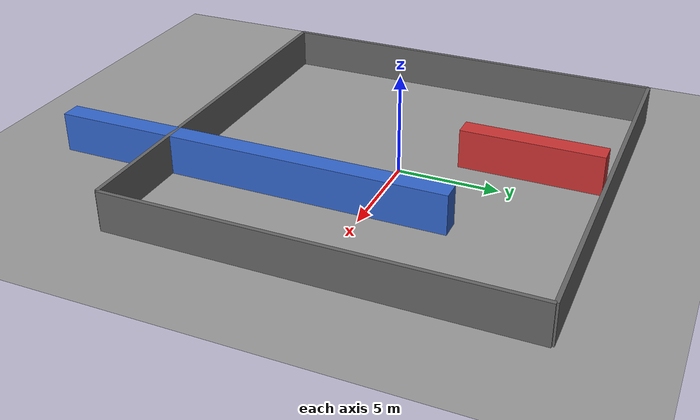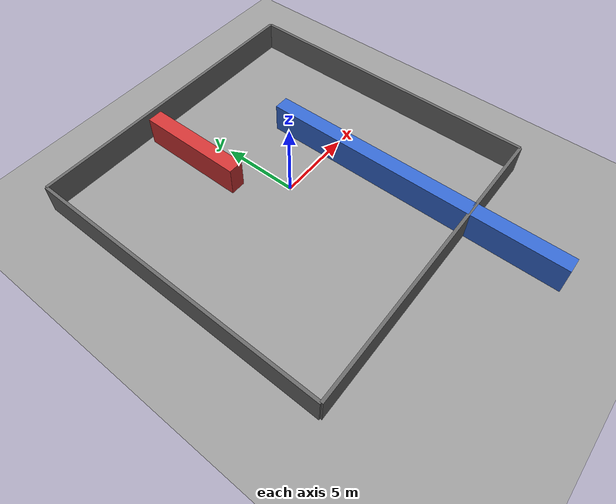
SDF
<?xml version="1.0" ?>
<!--
  World 2: Two static obstacles staggered on the robot's path (slalom).
  Robot start: x=-7, y=0  |  Goal: x=7, y=0
-->
<sdf version="1.7">
  <world name="world2_static_two">

    <gui>
      <camera name="user_camera">
        <pose>0 -20 18 0 0.8 1.5708</pose>
      </camera>
    </gui>

    <physics name="10ms" type="ode">
      <max_step_size>0.01</max_step_size>
      <real_time_factor>1.0</real_time_factor>
    </physics>

    <plugin filename="libignition-gazebo-physics-system.so"
            name="ignition::gazebo::systems::Physics"/>
    <plugin filename="libignition-gazebo-scene-broadcaster-system.so"
            name="ignition::gazebo::systems::SceneBroadcaster"/>
    <plugin filename="libignition-gazebo-user-commands-system.so"
            name="ignition::gazebo::systems::UserCommands"/>
    <plugin filename="libignition-gazebo-sensors-system.so"
            name="ignition::gazebo::systems::Sensors">
      <render_engine>ogre2</render_engine>
    </plugin>

    <light name="sun" type="directional">
      <cast_shadows>true</cast_shadows>
      <pose>0 0 20 0 0 0</pose>
      <diffuse>0.9 0.9 0.9 1</diffuse>
      <specular>0.3 0.3 0.3 1</specular>
      <attenuation><range>1000</range><constant>0.9</constant>
        <linear>0.01</linear><quadratic>0.001</quadratic></attenuation>
      <direction>-0.5 0.1 -0.9</direction>
    </light>

    <model name="ground_plane">
      <static>true</static>
      <link name="link">
        <collision name="collision">
          <geometry><plane><normal>0 0 1</normal><size>30 30</size></plane></geometry>
        </collision>
        <visual name="visual">
          <geometry><plane><normal>0 0 1</normal><size>30 30</size></plane></geometry>
          <material>
            <ambient>0.6 0.6 0.6 1</ambient>
            <diffuse>0.6 0.6 0.6 1</diffuse>
            <specular>0.1 0.1 0.1 1</specular>
          </material>
        </visual>
      </link>
    </model>

    <model name="wall_north">
      <static>true</static><pose>0 10 1 0 0 0</pose>
      <link name="link">
        <collision name="col"><geometry><box><size>20 0.2 2</size></box></geometry></collision>
        <visual name="vis"><geometry><box><size>20 0.2 2</size></box></geometry>
          <material><ambient>0.4 0.4 0.4 1</ambient><diffuse>0.4 0.4 0.4 1</diffuse></material></visual>
      </link>
    </model>
    <model name="wall_south">
      <static>true</static><pose>0 -10 1 0 0 0</pose>
      <link name="link">
        <collision name="col"><geometry><box><size>20 0.2 2</size></box></geometry></collision>
        <visual name="vis"><geometry><box><size>20 0.2 2</size></box></geometry>
          <material><ambient>0.4 0.4 0.4 1</ambient><diffuse>0.4 0.4 0.4 1</diffuse></material></visual>
      </link>
    </model>
    <model name="wall_east">
      <static>true</static><pose>10 0 1 0 0 0</pose>
      <link name="link">
        <collision name="col"><geometry><box><size>0.2 20 2</size></box></geometry></collision>
        <visual name="vis"><geometry><box><size>0.2 20 2</size></box></geometry>
          <material><ambient>0.4 0.4 0.4 1</ambient><diffuse>0.4 0.4 0.4 1</diffuse></material></visual>
      </link>
    </model>
    <model name="wall_west">
      <static>true</static><pose>-10 0 1 0 0 0</pose>
      <link name="link">
        <collision name="col"><geometry><box><size>0.2 20 2</size></box></geometry></collision>
        <visual name="vis"><geometry><box><size>0.2 20 2</size></box></geometry>
          <material><ambient>0.4 0.4 0.4 1</ambient><diffuse>0.4 0.4 0.4 1</diffuse></material></visual>
      </link>
    </model>

    <!-- Obstacle A: from north wall at x=-3
         1×7×2 m: centre y=6.0 → spans y=2.5 … 9.5 -->
    <model name="obstacle_A">
      <static>true</static>
      <pose>-2 6.0 1 0 0 0</pose>
      <link name="link">
        <collision name="col"><geometry><box><size>1 7 2</size></box></geometry></collision>
        <visual name="vis">
          <geometry><box><size>1 7 2</size></box></geometry>
          <material><ambient>0.8 0.2 0.2 1</ambient><diffuse>0.8 0.2 0.2 1</diffuse></material>
        </visual>
      </link>
    </model>

    <!-- Obstacle B: from south wall at x=3
         1×7×2 m: centre y=-6.0 → spans y=-9.5 … -2.5 -->
    <model name="obstacle_B">
      <static>true</static>
      <pose>4 -6.0 1 0 0 0</pose>
      <link name="link">
        <collision name="col"><geometry><box><size>1 20 2</size></box></geometry></collision>
        <visual name="vis">
          <geometry><box><size>1 20 2</size></box></geometry>
          <material><ambient>0.2 0.4 0.8 1</ambient><diffuse>0.2 0.4 0.8 1</diffuse></material>
        </visual>
      </link>
    </model>

  </world>
</sdf>
